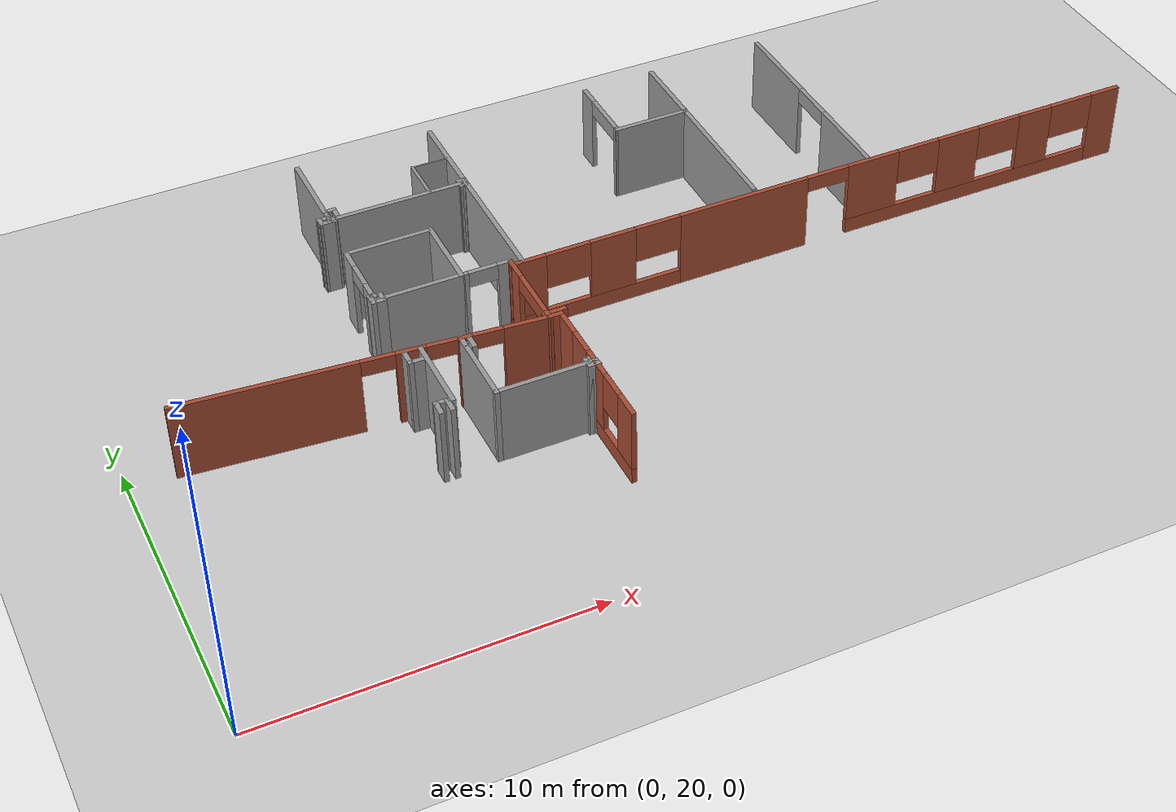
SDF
<sdf version="1.6">
 <world name="default">
  <model name="ground_plane">
   <static>1</static>
   <link name="link">
    <collision name="collision">
     <geometry><plane><normal>0 0 1</normal><size>100 100</size></plane></geometry>
     <surface><friction><ode><mu>100</mu><mu2>50</mu2></ode></friction></surface>
    </collision>
    <visual name="visual">
     <cast_shadows>0</cast_shadows>
     <geometry><plane><normal>0 0 1</normal><size>100 100</size></plane></geometry>
     <material>
      <script><uri>file://media/materials/scripts/gazebo.material</uri><name>Gazebo/Grey</name></script>
     </material>
    </visual>
   </link>
  </model>
  <model name="CVSSP">
   <pose>23.8714 24.094 0 0 -0 0</pose>
   <link name="Wall_17">
    <collision name="Wall_17_Collision">
     <geometry><box><size>7.25 0.15 2.5</size></box></geometry>
     <pose>0 0 1.25 0 -0 0</pose>
    </collision>
    <visual name="Wall_17_Visual">
     <pose>0 0 1.25 0 -0 0</pose>
     <geometry><box><size>7.25 0.15 2.5</size></box></geometry>
     <material>
      <script><uri>file://media/materials/scripts/gazebo.material</uri><name>Gazebo/Grey</name></script>
      <ambient>0.588235 0.588235 0.588235 1</ambient>
     </material>
    </visual>
    <pose>-11.4873 10.485 0 0 0 -1.5708</pose>
   </link>
   <link name="Wall_21">
    <pose>-6.21845 12.8269 0 0 0 -1.57055</pose>
    <visual name="Wall_21_Visual_0">
     <pose>-0.893143 0 1.25 0 -0 0</pose>
     <geometry><box><size>0.719046 0.15 2.5</size></box></geometry>
     <material>
      <script><uri>file://media/materials/scripts/gazebo.material</uri><name>Gazebo/Grey</name></script>
      <ambient>0.588235 0.588235 0.588235 1</ambient>
     </material>
    </visual>
    <collision name="Wall_21_Collision_0">
     <geometry><box><size>0.719046 0.15 2.5</size></box></geometry>
     <pose>-0.893143 0 1.25 0 -0 0</pose>
    </collision>
    <visual name="Wall_21_Visual_1">
     <pose>1.15058 0 1.25 0 -0 0</pose>
     <geometry><box><size>0.204165 0.15 2.5</size></box></geometry>
     <material>
      <script><uri>file://media/materials/scripts/gazebo.material</uri><name>Gazebo/Grey</name></script>
      <ambient>0.588235 0.588235 0.588235 1</ambient>
     </material>
    </visual>
    <collision name="Wall_21_Collision_1">
     <geometry><box><size>0.204165 0.15 2.5</size></box></geometry>
     <pose>1.15058 0 1.25 0 -0 0</pose>
    </collision>
    <visual name="Wall_21_Visual_2">
     <pose>0.257441 0 2.25 0 -0 0</pose>
     <geometry><box><size>1.58212 0.15 0.5</size></box></geometry>
     <material>
      <script><uri>file://media/materials/scripts/gazebo.material</uri><name>Gazebo/Grey</name></script>
      <ambient>0.588235 0.588235 0.588235 1</ambient>
     </material>
    </visual>
    <collision name="Wall_21_Collision_2">
     <geometry><box><size>1.58212 0.15 0.5</size></box></geometry>
     <pose>0.257441 0 2.25 0 -0 0</pose>
    </collision>
   </link>
   <link name="Wall_24">
    <collision name="Wall_24_Collision">
     <geometry><box><size>2.49412 0.15 2.5</size></box></geometry>
     <pose>0 0 1.25 0 -0 0</pose>
    </collision>
    <visual name="Wall_24_Visual">
     <pose>0 0 1.25 0 -0 0</pose>
     <geometry><box><size>2.49412 0.15 2.5</size></box></geometry>
     <material>
      <script><uri>file://media/materials/scripts/gazebo.material</uri><name>Gazebo/Grey</name></script>
      <ambient>0.588235 0.588235 0.588235 1</ambient>
     </material>
    </visual>
    <pose>-5.0461 11.6485 0 0 0 -0.000618</pose>
   </link>
   <link name="Wall_25">
    <collision name="Wall_25_Collision">
     <geometry><box><size>2.54698 0.15 2.5</size></box></geometry>
     <pose>0 0 1.25 0 -0 0</pose>
    </collision>
    <visual name="Wall_25_Visual">
     <pose>0 0 1.25 0 -0 0</pose>
     <geometry><box><size>2.54698 0.15 2.5</size></box></geometry>
     <material>
      <script><uri>file://media/materials/scripts/gazebo.material</uri><name>Gazebo/Grey</name></script>
      <ambient>0.588235 0.588235 0.588235 1</ambient>
     </material>
    </visual>
    <pose>-3.87405 12.8463 0 0 -0 1.5708</pose>
   </link>
   <link name="Wall_27">
    <collision name="Wall_27_Collision">
     <geometry><box><size>4.69046 0.15 2.5</size></box></geometry>
     <pose>0 0 1.25 0 -0 0</pose>
    </collision>
    <visual name="Wall_27_Visual">
     <pose>0 0 1.25 0 -0 0</pose>
     <geometry><box><size>4.69046 0.15 2.5</size></box></geometry>
     <material>
      <script><uri>file://media/materials/scripts/gazebo.material</uri><name>Gazebo/Grey</name></script>
      <ambient>0.588235 0.588235 0.588235 1</ambient>
     </material>
    </visual>
    <pose>-3.88025 9.37755 0 0 0 -1.57353</pose>
   </link>
   <link name="Wall_29">
    <pose>-0.023055 10.5087 0 0 0 -1.5708</pose>
    <visual name="Wall_29_Visual_0">
     <pose>-2.1277 0 1.25 0 -0 0</pose>
     <geometry><box><size>2.99461 0.15 2.5</size></box></geometry>
     <material>
      <script><uri>file://media/materials/scripts/gazebo.material</uri><name>Gazebo/Grey</name></script>
      <ambient>0.588235 0.588235 0.588235 1</ambient>
     </material>
    </visual>
    <collision name="Wall_29_Collision_0">
     <geometry><box><size>2.99461 0.15 2.5</size></box></geometry>
     <pose>-2.1277 0 1.25 0 -0 0</pose>
    </collision>
    <visual name="Wall_29_Visual_1">
     <pose>2.22714 0 1.25 0 -0 0</pose>
     <geometry><box><size>2.79571 0.15 2.5</size></box></geometry>
     <material>
      <script><uri>file://media/materials/scripts/gazebo.material</uri><name>Gazebo/Grey</name></script>
      <ambient>0.588235 0.588235 0.588235 1</ambient>
     </material>
    </visual>
    <collision name="Wall_29_Collision_1">
     <geometry><box><size>2.79571 0.15 2.5</size></box></geometry>
     <pose>2.22714 0 1.25 0 -0 0</pose>
    </collision>
    <visual name="Wall_29_Visual_2">
     <pose>0.099447 0 2.25 0 -0 0</pose>
     <geometry><box><size>1.45968 0.15 0.5</size></box></geometry>
     <material>
      <script><uri>file://media/materials/scripts/gazebo.material</uri><name>Gazebo/Grey</name></script>
      <ambient>0.588235 0.588235 0.588235 1</ambient>
     </material>
    </visual>
    <collision name="Wall_29_Collision_2">
     <geometry><box><size>1.45968 0.15 0.5</size></box></geometry>
     <pose>0.099447 0 2.25 0 -0 0</pose>
    </collision>
   </link>
   <link name="Wall_386">
    <pose>-17.129 4.76187 0 0 0 -0.090044</pose>
    <visual name="Wall_386_Visual_0">
     <pose>-2.75908 0 1.25 0 -0 0</pose>
     <geometry><box><size>5.32665 0.15 2.5</size></box></geometry>
     <material>
      <script><uri>file://media/materials/scripts/gazebo.material</uri><name>Gazebo/Bricks</name></script>
      <ambient>1 1 1 1</ambient>
     </material>
    </visual>
    <collision name="Wall_386_Collision_0">
     <geometry><box><size>5.32665 0.15 2.5</size></box></geometry>
     <pose>-2.75908 0 1.25 0 -0 0</pose>
    </collision>
    <visual name="Wall_386_Visual_1">
     <pose>1.33587 0 1.25 0 -0 0</pose>
     <geometry><box><size>0.878962 0.15 2.5</size></box></geometry>
     <material>
      <script><uri>file://media/materials/scripts/gazebo.material</uri><name>Gazebo/Bricks</name></script>
      <ambient>1 1 1 1</ambient>
     </material>
    </visual>
    <collision name="Wall_386_Collision_1">
     <geometry><box><size>0.878962 0.15 2.5</size></box></geometry>
     <pose>1.33587 0 1.25 0 -0 0</pose>
    </collision>
    <visual name="Wall_386_Visual_2">
     <pose>2.88503 0 1.25 0 -0 0</pose>
     <geometry><box><size>0.419343 0.15 2.5</size></box></geometry>
     <material>
      <script><uri>file://media/materials/scripts/gazebo.material</uri><name>Gazebo/Bricks</name></script>
      <ambient>1 1 1 1</ambient>
     </material>
    </visual>
    <collision name="Wall_386_Collision_2">
     <geometry><box><size>0.419343 0.15 2.5</size></box></geometry>
     <pose>2.88503 0 1.25 0 -0 0</pose>
    </collision>
    <visual name="Wall_386_Visual_3">
     <pose>4.70855 0 1.25 0 -0 0</pose>
     <geometry><box><size>1.4277 0.15 2.5</size></box></geometry>
     <material>
      <script><uri>file://media/materials/scripts/gazebo.material</uri><name>Gazebo/Bricks</name></script>
      <ambient>1 1 1 1</ambient>
     </material>
    </visual>
    <collision name="Wall_386_Collision_3">
     <geometry><box><size>1.4277 0.15 2.5</size></box></geometry>
     <pose>4.70855 0 1.25 0 -0 0</pose>
    </collision>
    <visual name="Wall_386_Visual_4">
     <pose>0.400321 0 2.25 0 -0 0</pose>
     <geometry><box><size>0.992148 0.15 0.5</size></box></geometry>
     <material>
      <script><uri>file://media/materials/scripts/gazebo.material</uri><name>Gazebo/Bricks</name></script>
      <ambient>1 1 1 1</ambient>
     </material>
    </visual>
    <collision name="Wall_386_Collision_4">
     <geometry><box><size>0.992148 0.15 0.5</size></box></geometry>
     <pose>0.400321 0 2.25 0 -0 0</pose>
    </collision>
    <visual name="Wall_386_Visual_5">
     <pose>2.22536 0 2.25 0 -0 0</pose>
     <geometry><box><size>0.9 0.15 0.5</size></box></geometry>
     <material>
      <script><uri>file://media/materials/scripts/gazebo.material</uri><name>Gazebo/Bricks</name></script>
      <ambient>1 1 1 1</ambient>
     </material>
    </visual>
    <collision name="Wall_386_Collision_5">
     <geometry><box><size>0.9 0.15 0.5</size></box></geometry>
     <pose>2.22536 0 2.25 0 -0 0</pose>
    </collision>
    <visual name="Wall_386_Visual_6">
     <pose>3.5447 0 2.25 0 -0 0</pose>
     <geometry><box><size>0.9 0.15 0.5</size></box></geometry>
     <material>
      <script><uri>file://media/materials/scripts/gazebo.material</uri><name>Gazebo/Bricks</name></script>
      <ambient>1 1 1 1</ambient>
     </material>
    </visual>
    <collision name="Wall_386_Collision_6">
     <geometry><box><size>0.9 0.15 0.5</size></box></geometry>
     <pose>3.5447 0 2.25 0 -0 0</pose>
    </collision>
   </link>
   <link name="Wall_387">
    <pose>-11.8031 5.68021 0 0 -0 1.5708</pose>
    <visual name="Wall_387_Visual_0">
     <pose>-1.29725 0 1.25 0 -0 0</pose>
     <geometry><box><size>0.353915 0.15 2.5</size></box></geometry>
     <material>
      <script><uri>file://media/materials/scripts/gazebo.material</uri><name>Gazebo/Bricks</name></script>
      <ambient>1 1 1 1</ambient>
     </material>
    </visual>
    <collision name="Wall_387_Collision_0">
     <geometry><box><size>0.353915 0.15 2.5</size></box></geometry>
     <pose>-1.29725 0 1.25 0 -0 0</pose>
    </collision>
    <visual name="Wall_387_Visual_1">
     <pose>1.03174 0 1.25 0 -0 0</pose>
     <geometry><box><size>0.884924 0.15 2.5</size></box></geometry>
     <material>
      <script><uri>file://media/materials/scripts/gazebo.material</uri><name>Gazebo/Bricks</name></script>
      <ambient>1 1 1 1</ambient>
     </material>
    </visual>
    <collision name="Wall_387_Collision_1">
     <geometry><box><size>0.884924 0.15 2.5</size></box></geometry>
     <pose>1.03174 0 1.25 0 -0 0</pose>
    </collision>
    <visual name="Wall_387_Visual_2">
     <pose>-0.265504 0 2.25 0 -0 0</pose>
     <geometry><box><size>1.70957 0.15 0.5</size></box></geometry>
     <material>
      <script><uri>file://media/materials/scripts/gazebo.material</uri><name>Gazebo/Bricks</name></script>
      <ambient>1 1 1 1</ambient>
     </material>
    </visual>
    <collision name="Wall_387_Collision_2">
     <geometry><box><size>1.70957 0.15 0.5</size></box></geometry>
     <pose>-0.265504 0 2.25 0 -0 0</pose>
    </collision>
   </link>
   <link name="Wall_411">
    <pose>-13.8531 7.07942 0 0 -0 3.14159</pose>
    <visual name="Wall_411_Visual_0">
     <pose>-1.88996 0 1.25 0 -0 0</pose>
     <geometry><box><size>0.470089 0.15 2.5</size></box></geometry>
     <material>
      <script><uri>file://media/materials/scripts/gazebo.material</uri><name>Gazebo/Grey</name></script>
      <ambient>0.588235 0.588235 0.588235 1</ambient>
     </material>
    </visual>
    <collision name="Wall_411_Collision_0">
     <geometry><box><size>0.470089 0.15 2.5</size></box></geometry>
     <pose>-1.88996 0 1.25 0 -0 0</pose>
    </collision>
    <visual name="Wall_411_Visual_1">
     <pose>0.685044 0 1.25 0 -0 0</pose>
     <geometry><box><size>2.87991 0.15 2.5</size></box></geometry>
     <material>
      <script><uri>file://media/materials/scripts/gazebo.material</uri><name>Gazebo/Grey</name></script>
      <ambient>0.588235 0.588235 0.588235 1</ambient>
     </material>
    </visual>
    <collision name="Wall_411_Collision_1">
     <geometry><box><size>2.87991 0.15 2.5</size></box></geometry>
     <pose>0.685044 0 1.25 0 -0 0</pose>
    </collision>
    <visual name="Wall_411_Visual_2">
     <pose>-1.20491 0 2.25 0 -0 0</pose>
     <geometry><box><size>0.9 0.15 0.5</size></box></geometry>
     <material>
      <script><uri>file://media/materials/scripts/gazebo.material</uri><name>Gazebo/Grey</name></script>
      <ambient>0.588235 0.588235 0.588235 1</ambient>
     </material>
    </visual>
    <collision name="Wall_411_Collision_2">
     <geometry><box><size>0.9 0.15 0.5</size></box></geometry>
     <pose>-1.20491 0 2.25 0 -0 0</pose>
    </collision>
   </link>
   <link name="Wall_412">
    <pose>-15.9031 8.25442 0 0 -0 1.5708</pose>
    <visual name="Wall_412_Visual_0">
     <pose>-0.812626 0 1.25 0 -0 0</pose>
     <geometry><box><size>0.874747 0.15 2.5</size></box></geometry>
     <material>
      <script><uri>file://media/materials/scripts/gazebo.material</uri><name>Gazebo/Grey</name></script>
      <ambient>1 1 1 1</ambient>
     </material>
    </visual>
    <collision name="Wall_412_Collision_0">
     <geometry><box><size>0.874747 0.15 2.5</size></box></geometry>
     <pose>-0.812626 0 1.25 0 -0 0</pose>
    </collision>
    <visual name="Wall_412_Visual_1">
     <pose>0.887374 0 1.25 0 -0 0</pose>
     <geometry><box><size>0.725253 0.15 2.5</size></box></geometry>
     <material>
      <script><uri>file://media/materials/scripts/gazebo.material</uri><name>Gazebo/Grey</name></script>
      <ambient>1 1 1 1</ambient>
     </material>
    </visual>
    <collision name="Wall_412_Collision_1">
     <geometry><box><size>0.725253 0.15 2.5</size></box></geometry>
     <pose>0.887374 0 1.25 0 -0 0</pose>
    </collision>
    <visual name="Wall_412_Visual_2">
     <pose>0.074747 0 2.25 0 -0 0</pose>
     <geometry><box><size>0.9 0.15 0.5</size></box></geometry>
     <material>
      <script><uri>file://media/materials/scripts/gazebo.material</uri><name>Gazebo/Grey</name></script>
      <ambient>1 1 1 1</ambient>
     </material>
    </visual>
    <collision name="Wall_412_Collision_2">
     <geometry><box><size>0.9 0.15 0.5</size></box></geometry>
     <pose>0.074747 0 2.25 0 -0 0</pose>
    </collision>
   </link>
   <link name="Wall_413">
    <collision name="Wall_413_Collision">
     <geometry><box><size>2.75 0.15 2.5</size></box></geometry>
     <pose>0 0 1.25 0 -0 0</pose>
    </collision>
    <visual name="Wall_413_Visual">
     <pose>0 0 1.25 0 -0 0</pose>
     <geometry><box><size>2.75 0.15 2.5</size></box></geometry>
     <material>
      <script><uri>file://media/materials/scripts/gazebo.material</uri><name>Gazebo/Grey</name></script>
      <ambient>0.588235 0.588235 0.588235 1</ambient>
     </material>
    </visual>
    <pose>-14.6031 9.42942 0 0 -0 0</pose>
   </link>
   <link name="Wall_414">
    <collision name="Wall_414_Collision">
     <geometry><box><size>2.5 0.15 2.5</size></box></geometry>
     <pose>0 0 1.25 0 -0 0</pose>
    </collision>
    <visual name="Wall_414_Visual">
     <pose>0 0 1.25 0 -0 0</pose>
     <geometry><box><size>2.5 0.15 2.5</size></box></geometry>
     <material>
      <script><uri>file://media/materials/scripts/gazebo.material</uri><name>Gazebo/Grey</name></script>
      <ambient>0.588235 0.588235 0.588235 1</ambient>
     </material>
    </visual>
    <pose>-13.3031 8.25442 0 0 0 -1.5708</pose>
   </link>
   <link name="Wall_416">
    <collision name="Wall_416_Collision">
     <geometry><box><size>3 0.15 2.5</size></box></geometry>
     <pose>0 0 1.25 0 -0 0</pose>
    </collision>
    <visual name="Wall_416_Visual">
     <pose>0 0 1.25 0 -0 0</pose>
     <geometry><box><size>3 0.15 2.5</size></box></geometry>
     <material>
      <script><uri>file://media/materials/scripts/gazebo.material</uri><name>Gazebo/Grey</name></script>
      <ambient>0.588235 0.588235 0.588235 1</ambient>
     </material>
    </visual>
    <pose>-15.7939 12.5789 0 0 0 -1.5708</pose>
   </link>
   <link name="Wall_417">
    <collision name="Wall_417_Collision">
     <geometry><box><size>4.25 0.15 2.5</size></box></geometry>
     <pose>0 0 1.25 0 -0 0</pose>
    </collision>
    <visual name="Wall_417_Visual">
     <pose>0 0 1.25 0 -0 0</pose>
     <geometry><box><size>4.25 0.15 2.5</size></box></geometry>
     <material>
      <script><uri>file://media/materials/scripts/gazebo.material</uri><name>Gazebo/Grey</name></script>
      <ambient>1 1 1 1</ambient>
     </material>
    </visual>
    <pose>-13.7515 11.1539 0 0 -0 0</pose>
   </link>
   <link name="Wall_419">
    <collision name="Wall_419_Collision">
     <geometry><box><size>1.502 0.1 2.5</size></box></geometry>
     <pose>0 0 1.25 0 -0 0</pose>
    </collision>
    <visual name="Wall_419_Visual">
     <pose>0 0 1.25 0 -0 0</pose>
     <geometry><box><size>1.502 0.1 2.5</size></box></geometry>
     <material>
      <script><uri>file://media/materials/scripts/gazebo.material</uri><name>Gazebo/Grey</name></script>
      <ambient>0.588235 0.588235 0.588235 1</ambient>
     </material>
    </visual>
    <pose>-12.6454 11.8362 0 0 -0 1.5708</pose>
   </link>
   <link name="Wall_420">
    <collision name="Wall_420_Collision">
     <geometry><box><size>1.18498 0.05 2.5</size></box></geometry>
     <pose>0 0 1.25 0 -0 0</pose>
    </collision>
    <visual name="Wall_420_Visual">
     <pose>0 0 1.25 0 -0 0</pose>
     <geometry><box><size>1.18498 0.05 2.5</size></box></geometry>
     <material>
      <script><uri>file://media/materials/scripts/gazebo.material</uri><name>Gazebo/Grey</name></script>
      <ambient>1 1 1 1</ambient>
     </material>
    </visual>
    <pose>-12.0954 12.5375 0 0 -0 0.000414</pose>
   </link>
   <link name="Wall_426">
    <collision name="Wall_426_Collision">
     <geometry><box><size>2.5 0.15 2.5</size></box></geometry>
     <pose>0 0 1.25 0 -0 0</pose>
    </collision>
    <visual name="Wall_426_Visual">
     <pose>0 0 1.25 0 -0 0</pose>
     <geometry><box><size>2.5 0.15 2.5</size></box></geometry>
     <material>
      <script><uri>file://media/materials/scripts/gazebo.material</uri><name>Gazebo/Grey</name></script>
      <ambient>0.588235 0.588235 0.588235 1</ambient>
     </material>
    </visual>
    <pose>-15.526 3.44298 0 0 0 -1.5708</pose>
   </link>
   <link name="Wall_434">
    <collision name="Wall_434_Collision">
     <geometry><box><size>0.640034 0.15 2.5</size></box></geometry>
     <pose>0 0 1.25 0 -0 0</pose>
    </collision>
    <visual name="Wall_434_Visual">
     <pose>0 0 1.25 0 -0 0</pose>
     <geometry><box><size>0.640034 0.15 2.5</size></box></geometry>
     <material>
      <script><uri>file://media/materials/scripts/gazebo.material</uri><name>Gazebo/Grey</name></script>
      <ambient>1 1 1 1</ambient>
     </material>
    </visual>
    <pose>-15.7533 4.14574 0 0 -0 3.14159</pose>
   </link>
   <link name="Wall_435">
    <collision name="Wall_435_Collision">
     <geometry><box><size>0.639722 0.15 2.5</size></box></geometry>
     <pose>0 0 1.25 0 -0 0</pose>
    </collision>
    <visual name="Wall_435_Visual">
     <pose>0 0 1.25 0 -0 0</pose>
     <geometry><box><size>0.639722 0.15 2.5</size></box></geometry>
     <material>
      <script><uri>file://media/materials/scripts/gazebo.material</uri><name>Gazebo/Grey</name></script>
      <ambient>0.588235 0.588235 0.588235 1</ambient>
     </material>
    </visual>
    <pose>-15.9982 4.3906 0 0 -0 1.5708</pose>
   </link>
   <link name="Wall_437">
    <collision name="Wall_437_Collision">
     <geometry><box><size>0.5 0.15 2.5</size></box></geometry>
     <pose>0 0 1.25 0 -0 0</pose>
    </collision>
    <visual name="Wall_437_Visual">
     <pose>0 0 1.25 0 -0 0</pose>
     <geometry><box><size>0.5 0.15 2.5</size></box></geometry>
     <material>
      <script><uri>file://media/materials/scripts/gazebo.material</uri><name>Gazebo/Bricks</name></script>
      <ambient>1 1 1 1</ambient>
     </material>
    </visual>
    <pose>-11.6281 4.28101 0 0 -0 0</pose>
   </link>
   <link name="Wall_438">
    <pose>-11.4531 1.98101 0 0 0 -1.5708</pose>
    <visual name="Wall_438_Visual_0">
     <pose>-1.88418 0 1.25 0 -0 0</pose>
     <geometry><box><size>0.981638 0.15 2.5</size></box></geometry>
     <material>
      <script><uri>file://media/materials/scripts/gazebo.material</uri><name>Gazebo/Bricks</name></script>
      <ambient>1 1 1 1</ambient>
     </material>
    </visual>
    <collision name="Wall_438_Collision_0">
     <geometry><box><size>0.981638 0.15 2.5</size></box></geometry>
     <pose>-1.88418 0 1.25 0 -0 0</pose>
    </collision>
    <visual name="Wall_438_Visual_1">
     <pose>0.490819 0 0.25 0 -0 0</pose>
     <geometry><box><size>3.76836 0.15 0.5</size></box></geometry>
     <material>
      <script><uri>file://media/materials/scripts/gazebo.material</uri><name>Gazebo/Bricks</name></script>
      <ambient>1 1 1 1</ambient>
     </material>
    </visual>
    <collision name="Wall_438_Collision_1">
     <geometry><box><size>3.76836 0.15 0.5</size></box></geometry>
     <pose>0.490819 0 0.25 0 -0 0</pose>
    </collision>
    <visual name="Wall_438_Visual_2">
     <pose>0.039676 0 1.5 0 -0 0</pose>
     <geometry><box><size>1.08359 0.15 2</size></box></geometry>
     <material>
      <script><uri>file://media/materials/scripts/gazebo.material</uri><name>Gazebo/Bricks</name></script>
      <ambient>1 1 1 1</ambient>
     </material>
    </visual>
    <collision name="Wall_438_Collision_2">
     <geometry><box><size>1.08359 0.15 2</size></box></geometry>
     <pose>0.039676 0 1.5 0 -0 0</pose>
    </collision>
    <visual name="Wall_438_Visual_3">
     <pose>1.93363 0 1.5 0 -0 0</pose>
     <geometry><box><size>0.882734 0.15 2</size></box></geometry>
     <material>
      <script><uri>file://media/materials/scripts/gazebo.material</uri><name>Gazebo/Bricks</name></script>
      <ambient>1 1 1 1</ambient>
     </material>
    </visual>
    <collision name="Wall_438_Collision_3">
     <geometry><box><size>0.882734 0.15 2</size></box></geometry>
     <pose>1.93363 0 1.5 0 -0 0</pose>
    </collision>
    <visual name="Wall_438_Visual_4">
     <pose>-0.94774 0 1.9 0 -0 0</pose>
     <geometry><box><size>0.891243 0.15 1.2</size></box></geometry>
     <material>
      <script><uri>file://media/materials/scripts/gazebo.material</uri><name>Gazebo/Bricks</name></script>
      <ambient>1 1 1 1</ambient>
     </material>
    </visual>
    <collision name="Wall_438_Collision_4">
     <geometry><box><size>0.891243 0.15 1.2</size></box></geometry>
     <pose>-0.94774 0 1.9 0 -0 0</pose>
    </collision>
    <visual name="Wall_438_Visual_5">
     <pose>1.03687 0 1.9 0 -0 0</pose>
     <geometry><box><size>0.910795 0.15 1.2</size></box></geometry>
     <material>
      <script><uri>file://media/materials/scripts/gazebo.material</uri><name>Gazebo/Bricks</name></script>
      <ambient>1 1 1 1</ambient>
     </material>
    </visual>
    <collision name="Wall_438_Collision_5">
     <geometry><box><size>0.910795 0.15 1.2</size></box></geometry>
     <pose>1.03687 0 1.9 0 -0 0</pose>
    </collision>
   </link>
   <link name="Wall_443">
    <collision name="Wall_443_Collision">
     <geometry><box><size>3.08833 0.15 2.5</size></box></geometry>
     <pose>0 0 1.25 0 -0 0</pose>
    </collision>
    <visual name="Wall_443_Visual">
     <pose>0 0 1.25 0 -0 0</pose>
     <geometry><box><size>3.08833 0.15 2.5</size></box></geometry>
     <material>
      <script><uri>file://media/materials/scripts/gazebo.material</uri><name>Gazebo/Grey</name></script>
      <ambient>0.588235 0.588235 0.588235 1</ambient>
     </material>
    </visual>
    <pose>-12.9025 2.02945 0 0 -0 3.14159</pose>
   </link>
   <link name="Wall_444">
    <collision name="Wall_444_Collision">
     <geometry><box><size>2.63359 0.15 2.5</size></box></geometry>
     <pose>0 0 1.25 0 -0 0</pose>
    </collision>
    <visual name="Wall_444_Visual">
     <pose>0 0 1.25 0 -0 0</pose>
     <geometry><box><size>2.63359 0.15 2.5</size></box></geometry>
     <material>
      <script><uri>file://media/materials/scripts/gazebo.material</uri><name>Gazebo/Grey</name></script>
      <ambient>0.588235 0.588235 0.588235 1</ambient>
     </material>
    </visual>
    <pose>-14.3716 3.27124 0 0 -0 1.5708</pose>
   </link>
   <link name="Wall_46">
    <pose>-1.40579 6.86917 0 0 -0 3.14155</pose>
    <visual name="Wall_46_Visual_0">
     <pose>-9.95927 0 1.25 0 -0 0</pose>
     <geometry><box><size>1.03804 0.15 2.5</size></box></geometry>
     <material>
      <script><uri>file://media/materials/scripts/gazebo.material</uri><name>Gazebo/Bricks</name></script>
      <ambient>1 1 1 1</ambient>
     </material>
    </visual>
    <collision name="Wall_46_Collision_0">
     <geometry><box><size>1.03804 0.15 2.5</size></box></geometry>
     <pose>-9.95927 0 1.25 0 -0 0</pose>
    </collision>
    <visual name="Wall_46_Visual_1">
     <pose>2.91124 0 1.25 0 -0 0</pose>
     <geometry><box><size>4.28444 0.15 2.5</size></box></geometry>
     <material>
      <script><uri>file://media/materials/scripts/gazebo.material</uri><name>Gazebo/Bricks</name></script>
      <ambient>1 1 1 1</ambient>
     </material>
    </visual>
    <collision name="Wall_46_Collision_1">
     <geometry><box><size>4.28444 0.15 2.5</size></box></geometry>
     <pose>2.91124 0 1.25 0 -0 0</pose>
    </collision>
    <visual name="Wall_46_Visual_2">
     <pose>-5.03718 0 0.25 0 -0 0</pose>
     <geometry><box><size>8.80612 0.15 0.5</size></box></geometry>
     <material>
      <script><uri>file://media/materials/scripts/gazebo.material</uri><name>Gazebo/Bricks</name></script>
      <ambient>1 1 1 1</ambient>
     </material>
    </visual>
    <collision name="Wall_46_Collision_2">
     <geometry><box><size>8.80612 0.15 0.5</size></box></geometry>
     <pose>-5.03718 0 0.25 0 -0 0</pose>
    </collision>
    <visual name="Wall_46_Visual_3">
     <pose>7.76588 0 0.25 0 -0 0</pose>
     <geometry><box><size>5.42482 0.15 0.5</size></box></geometry>
     <material>
      <script><uri>file://media/materials/scripts/gazebo.material</uri><name>Gazebo/Bricks</name></script>
      <ambient>1 1 1 1</ambient>
     </material>
    </visual>
    <collision name="Wall_46_Collision_3">
     <geometry><box><size>5.42482 0.15 0.5</size></box></geometry>
     <pose>7.76588 0 0.25 0 -0 0</pose>
    </collision>
    <visual name="Wall_46_Visual_4">
     <pose>-7.35036 0 1.5 0 -0 0</pose>
     <geometry><box><size>1.1891 0.15 2</size></box></geometry>
     <material>
      <script><uri>file://media/materials/scripts/gazebo.material</uri><name>Gazebo/Bricks</name></script>
      <ambient>1 1 1 1</ambient>
     </material>
    </visual>
    <collision name="Wall_46_Collision_4">
     <geometry><box><size>1.1891 0.15 2</size></box></geometry>
     <pose>-7.35036 0 1.5 0 -0 0</pose>
    </collision>
    <visual name="Wall_46_Visual_5">
     <pose>-4.55193 0 1.5 0 -0 0</pose>
     <geometry><box><size>1.43988 0.15 2</size></box></geometry>
     <material>
      <script><uri>file://media/materials/scripts/gazebo.material</uri><name>Gazebo/Bricks</name></script>
      <ambient>1 1 1 1</ambient>
     </material>
    </visual>
    <collision name="Wall_46_Collision_5">
     <geometry><box><size>1.43988 0.15 2</size></box></geometry>
     <pose>-4.55193 0 1.5 0 -0 0</pose>
    </collision>
    <visual name="Wall_46_Visual_6">
     <pose>-1.51388 0 1.5 0 -0 0</pose>
     <geometry><box><size>1.75953 0.15 2</size></box></geometry>
     <material>
      <script><uri>file://media/materials/scripts/gazebo.material</uri><name>Gazebo/Bricks</name></script>
      <ambient>1 1 1 1</ambient>
     </material>
    </visual>
    <collision name="Wall_46_Collision_6">
     <geometry><box><size>1.75953 0.15 2</size></box></geometry>
     <pose>-1.51388 0 1.5 0 -0 0</pose>
    </collision>
    <visual name="Wall_46_Visual_7">
     <pose>-1.51388 0 1.5 0 -0 0</pose>
     <geometry><box><size>1.75953 0.15 2</size></box></geometry>
     <material>
      <script><uri>file://media/materials/scripts/gazebo.material</uri><name>Gazebo/Bricks</name></script>
      <ambient>1 1 1 1</ambient>
     </material>
    </visual>
    <collision name="Wall_46_Collision_7">
     <geometry><box><size>1.75953 0.15 2</size></box></geometry>
     <pose>-1.51388 0 1.5 0 -0 0</pose>
    </collision>
    <visual name="Wall_46_Visual_8">
     <pose>7.24439 0 1.5 0 -0 0</pose>
     <geometry><box><size>1.44818 0.15 2</size></box></geometry>
     <material>
      <script><uri>file://media/materials/scripts/gazebo.material</uri><name>Gazebo/Bricks</name></script>
      <ambient>1 1 1 1</ambient>
     </material>
    </visual>
    <collision name="Wall_46_Collision_8">
     <geometry><box><size>1.44818 0.15 2</size></box></geometry>
     <pose>7.24439 0 1.5 0 -0 0</pose>
    </collision>
    <visual name="Wall_46_Visual_9">
     <pose>9.92244 0 1.5 0 -0 0</pose>
     <geometry><box><size>1.1117 0.15 2</size></box></geometry>
     <material>
      <script><uri>file://media/materials/scripts/gazebo.material</uri><name>Gazebo/Bricks</name></script>
      <ambient>1 1 1 1</ambient>
     </material>
    </visual>
    <collision name="Wall_46_Collision_9">
     <geometry><box><size>1.1117 0.15 2</size></box></geometry>
     <pose>9.92244 0 1.5 0 -0 0</pose>
    </collision>
    <visual name="Wall_46_Visual_10">
     <pose>-8.69258 0 1.9 0 -0 0</pose>
     <geometry><box><size>1.49533 0.15 1.2</size></box></geometry>
     <material>
      <script><uri>file://media/materials/scripts/gazebo.material</uri><name>Gazebo/Bricks</name></script>
      <ambient>1 1 1 1</ambient>
     </material>
    </visual>
    <collision name="Wall_46_Collision_10">
     <geometry><box><size>1.49533 0.15 1.2</size></box></geometry>
     <pose>-8.69258 0 1.9 0 -0 0</pose>
    </collision>
    <visual name="Wall_46_Visual_11">
     <pose>5.78688 0 1.9 0 -0 0</pose>
     <geometry><box><size>1.46684 0.15 1.2</size></box></geometry>
     <material>
      <script><uri>file://media/materials/scripts/gazebo.material</uri><name>Gazebo/Bricks</name></script>
      <ambient>1 1 1 1</ambient>
     </material>
    </visual>
    <collision name="Wall_46_Collision_11">
     <geometry><box><size>1.46684 0.15 1.2</size></box></geometry>
     <pose>5.78688 0 1.9 0 -0 0</pose>
    </collision>
    <visual name="Wall_46_Visual_12">
     <pose>-6.01384 0 1.9 0 -0 0</pose>
     <geometry><box><size>1.48394 0.15 1.2</size></box></geometry>
     <material>
      <script><uri>file://media/materials/scripts/gazebo.material</uri><name>Gazebo/Bricks</name></script>
      <ambient>1 1 1 1</ambient>
     </material>
    </visual>
    <collision name="Wall_46_Collision_12">
     <geometry><box><size>1.48394 0.15 1.2</size></box></geometry>
     <pose>-6.01384 0 1.9 0 -0 0</pose>
    </collision>
    <visual name="Wall_46_Visual_13">
     <pose>-3.11282 0 1.9 0 -0 0</pose>
     <geometry><box><size>1.43834 0.15 1.2</size></box></geometry>
     <material>
      <script><uri>file://media/materials/scripts/gazebo.material</uri><name>Gazebo/Bricks</name></script>
      <ambient>1 1 1 1</ambient>
     </material>
    </visual>
    <collision name="Wall_46_Collision_13">
     <geometry><box><size>1.43834 0.15 1.2</size></box></geometry>
     <pose>-3.11282 0 1.9 0 -0 0</pose>
    </collision>
    <visual name="Wall_46_Visual_14">
     <pose>8.66753 0 1.9 0 -0 0</pose>
     <geometry><box><size>1.39811 0.15 1.2</size></box></geometry>
     <material>
      <script><uri>file://media/materials/scripts/gazebo.material</uri><name>Gazebo/Bricks</name></script>
      <ambient>1 1 1 1</ambient>
     </material>
    </visual>
    <collision name="Wall_46_Collision_14">
     <geometry><box><size>1.39811 0.15 1.2</size></box></geometry>
     <pose>8.66753 0 1.9 0 -0 0</pose>
    </collision>
    <visual name="Wall_46_Visual_15">
     <pose>0.067453 0 2.25 0 -0 0</pose>
     <geometry><box><size>1.40314 0.15 0.5</size></box></geometry>
     <material>
      <script><uri>file://media/materials/scripts/gazebo.material</uri><name>Gazebo/Bricks</name></script>
      <ambient>1 1 1 1</ambient>
     </material>
    </visual>
    <collision name="Wall_46_Collision_15">
     <geometry><box><size>1.40314 0.15 0.5</size></box></geometry>
     <pose>0.067453 0 2.25 0 -0 0</pose>
    </collision>
    <visual name="Wall_46_Visual_16">
     <pose>0.067453 0 2.25 0 -0 0</pose>
     <geometry><box><size>1.40314 0.15 0.5</size></box></geometry>
     <material>
      <script><uri>file://media/materials/scripts/gazebo.material</uri><name>Gazebo/Bricks</name></script>
      <ambient>1 1 1 1</ambient>
     </material>
    </visual>
    <collision name="Wall_46_Collision_16">
     <geometry><box><size>1.40314 0.15 0.5</size></box></geometry>
     <pose>0.067453 0 2.25 0 -0 0</pose>
    </collision>
   </link>
   <link name="Wall_461">
    <collision name="Wall_461_Collision">
     <geometry><box><size>0.743141 0.15 2.5</size></box></geometry>
     <pose>0 0 1.25 0 -0 0</pose>
    </collision>
    <visual name="Wall_461_Visual">
     <pose>0 0 1.25 0 -0 0</pose>
     <geometry><box><size>0.743141 0.15 2.5</size></box></geometry>
     <material>
      <script><uri>file://media/materials/scripts/gazebo.material</uri><name>Gazebo/Bricks</name></script>
      <ambient>1 1 1 1</ambient>
     </material>
    </visual>
    <pose>-11.5857 4.44568 0 0 -0 0</pose>
   </link>
   <link name="Wall_683">
    <collision name="Wall_683_Collision">
     <geometry><box><size>0.416002 0.15 2.5</size></box></geometry>
     <pose>0 0 1.25 0 -0 0</pose>
    </collision>
    <visual name="Wall_683_Visual">
     <pose>0 0 1.25 0 -0 0</pose>
     <geometry><box><size>0.416002 0.15 2.5</size></box></geometry>
     <material>
      <script><uri>file://media/materials/scripts/gazebo.material</uri><name>Gazebo/Grey</name></script>
      <ambient>1 1 1 1</ambient>
     </material>
    </visual>
    <pose>-15.6425 11.5855 0 0 -0 0</pose>
   </link>
   <link name="Wall_684">
    <collision name="Wall_684_Collision">
     <geometry><box><size>0.576434 0.15 2.5</size></box></geometry>
     <pose>0 0 1.25 0 -0 0</pose>
    </collision>
    <visual name="Wall_684_Visual">
     <pose>0 0 1.25 0 -0 0</pose>
     <geometry><box><size>0.576434 0.15 2.5</size></box></geometry>
     <material>
      <script><uri>file://media/materials/scripts/gazebo.material</uri><name>Gazebo/Grey</name></script>
      <ambient>1 1 1 1</ambient>
     </material>
    </visual>
    <pose>-15.5095 11.3727 0 0 0 -1.5708</pose>
   </link>
   <link name="Wall_685">
    <collision name="Wall_685_Collision">
     <geometry><box><size>0.296904 0.15 2.5</size></box></geometry>
     <pose>0 0 1.25 0 -0 0</pose>
    </collision>
    <visual name="Wall_685_Visual">
     <pose>0 0 1.25 0 -0 0</pose>
     <geometry><box><size>0.296904 0.15 2.5</size></box></geometry>
     <material>
      <script><uri>file://media/materials/scripts/gazebo.material</uri><name>Gazebo/Grey</name></script>
      <ambient>1 1 1 1</ambient>
     </material>
    </visual>
    <pose>-15.5827 11.1599 0 0 -0 3.14159</pose>
   </link>
   <link name="Wall_686">
    <collision name="Wall_686_Collision">
     <geometry><box><size>0.244046 0.15 2.5</size></box></geometry>
     <pose>0 0 1.25 0 -0 0</pose>
    </collision>
    <visual name="Wall_686_Visual">
     <pose>0 0 1.25 0 -0 0</pose>
     <geometry><box><size>0.244046 0.15 2.5</size></box></geometry>
     <material>
      <script><uri>file://media/materials/scripts/gazebo.material</uri><name>Gazebo/Grey</name></script>
      <ambient>1 1 1 1</ambient>
     </material>
    </visual>
    <pose>-15.6625 11.1134 0 0 0 -1.71269</pose>
   </link>
   <link name="Wall_687">
    <collision name="Wall_687_Collision">
     <geometry><box><size>0.535932 0.15 2.5</size></box></geometry>
     <pose>0 0 1.25 0 -0 0</pose>
    </collision>
    <visual name="Wall_687_Visual">
     <pose>0 0 1.25 0 -0 0</pose>
     <geometry><box><size>0.535932 0.15 2.5</size></box></geometry>
     <material>
      <script><uri>file://media/materials/scripts/gazebo.material</uri><name>Gazebo/Grey</name></script>
      <ambient>1 1 1 1</ambient>
     </material>
    </visual>
    <pose>-15.862 11.0668 0 0 -0 3.14159</pose>
   </link>
   <link name="Wall_688">
    <collision name="Wall_688_Collision">
     <geometry><box><size>0.349944 0.15 2.5</size></box></geometry>
     <pose>0 0 1.25 0 -0 0</pose>
    </collision>
    <visual name="Wall_688_Visual">
     <pose>0 0 1.25 0 -0 0</pose>
     <geometry><box><size>0.349944 0.15 2.5</size></box></geometry>
     <material>
      <script><uri>file://media/materials/scripts/gazebo.material</uri><name>Gazebo/Grey</name></script>
      <ambient>1 1 1 1</ambient>
     </material>
    </visual>
    <pose>-16.0615 11.1666 0 0 -0 1.63736</pose>
   </link>
   <link name="Wall_689">
    <collision name="Wall_689_Collision">
     <geometry><box><size>0.442904 0.15 2.5</size></box></geometry>
     <pose>0 0 1.25 0 -0 0</pose>
    </collision>
    <visual name="Wall_689_Visual">
     <pose>0 0 1.25 0 -0 0</pose>
     <geometry><box><size>0.442904 0.15 2.5</size></box></geometry>
     <material>
      <script><uri>file://media/materials/scripts/gazebo.material</uri><name>Gazebo/Grey</name></script>
      <ambient>1 1 1 1</ambient>
     </material>
    </visual>
    <pose>-15.9218 11.2663 0 0 -0 0</pose>
   </link>
   <link name="Wall_690">
    <collision name="Wall_690_Collision">
     <geometry><box><size>0.469202 0.15 2.5</size></box></geometry>
     <pose>0 0 1.25 0 -0 0</pose>
    </collision>
    <visual name="Wall_690_Visual">
     <pose>0 0 1.25 0 -0 0</pose>
     <geometry><box><size>0.469202 0.15 2.5</size></box></geometry>
     <material>
      <script><uri>file://media/materials/scripts/gazebo.material</uri><name>Gazebo/Grey</name></script>
      <ambient>1 1 1 1</ambient>
     </material>
    </visual>
    <pose>-15.7755 11.4259 0 0 -0 1.5708</pose>
   </link>
   <link name="Wall_692">
    <collision name="Wall_692_Collision">
     <geometry><box><size>0.385736 0.15 2.5</size></box></geometry>
     <pose>0 0 1.25 0 -0 0</pose>
    </collision>
    <visual name="Wall_692_Visual">
     <pose>0 0 1.25 0 -0 0</pose>
     <geometry><box><size>0.385736 0.15 2.5</size></box></geometry>
     <material>
      <script><uri>file://media/materials/scripts/gazebo.material</uri><name>Gazebo/Grey</name></script>
      <ambient>1 1 1 1</ambient>
     </material>
    </visual>
    <pose>-11.6564 11.1743 0 0 -0 1.5708</pose>
   </link>
   <link name="Wall_693">
    <collision name="Wall_693_Collision">
     <geometry><box><size>0.302277 0.15 2.5</size></box></geometry>
     <pose>0 0 1.25 0 -0 0</pose>
    </collision>
    <visual name="Wall_693_Visual">
     <pose>0 0 1.25 0 -0 0</pose>
     <geometry><box><size>0.302277 0.15 2.5</size></box></geometry>
     <material>
      <script><uri>file://media/materials/scripts/gazebo.material</uri><name>Gazebo/Grey</name></script>
      <ambient>1 1 1 1</ambient>
     </material>
    </visual>
    <pose>-11.5804 11.296 0 0 -0 0.049958</pose>
   </link>
   <link name="Wall_694">
    <collision name="Wall_694_Collision">
     <geometry><box><size>0.370527 0.15 2.5</size></box></geometry>
     <pose>0 0 1.25 0 -0 0</pose>
    </collision>
    <visual name="Wall_694_Visual">
     <pose>0 0 1.25 0 -0 0</pose>
     <geometry><box><size>0.370527 0.15 2.5</size></box></geometry>
     <material>
      <script><uri>file://media/materials/scripts/gazebo.material</uri><name>Gazebo/Grey</name></script>
      <ambient>1 1 1 1</ambient>
     </material>
    </visual>
    <pose>-11.4967 11.1895 0 0 0 -1.5708</pose>
   </link>
   <link name="Wall_695">
    <collision name="Wall_695_Collision">
     <geometry><box><size>0.303789 0.15 2.5</size></box></geometry>
     <pose>0 0 1.25 0 -0 0</pose>
    </collision>
    <visual name="Wall_695_Visual">
     <pose>0 0 1.25 0 -0 0</pose>
     <geometry><box><size>0.303789 0.15 2.5</size></box></geometry>
     <material>
      <script><uri>file://media/materials/scripts/gazebo.material</uri><name>Gazebo/Grey</name></script>
      <ambient>1 1 1 1</ambient>
     </material>
    </visual>
    <pose>-11.5804 11.0678 0 0 0 -2.9927</pose>
   </link>
   <link name="Wall_697">
    <collision name="Wall_697_Collision">
     <geometry><box><size>0.438966 0.15 2.5</size></box></geometry>
     <pose>0 0 1.25 0 -0 0</pose>
    </collision>
    <visual name="Wall_697_Visual">
     <pose>0 0 1.25 0 -0 0</pose>
     <geometry><box><size>0.438966 0.15 2.5</size></box></geometry>
     <material>
      <script><uri>file://media/materials/scripts/gazebo.material</uri><name>Gazebo/Grey</name></script>
      <ambient>1 1 1 1</ambient>
     </material>
    </visual>
    <pose>-15.9915 7.1434 0 0 0 -1.5708</pose>
   </link>
   <link name="Wall_698">
    <collision name="Wall_698_Collision">
     <geometry><box><size>0.461779 0.15 2.5</size></box></geometry>
     <pose>0 0 1.25 0 -0 0</pose>
    </collision>
    <visual name="Wall_698_Visual">
     <pose>0 0 1.25 0 -0 0</pose>
     <geometry><box><size>0.461779 0.15 2.5</size></box></geometry>
     <material>
      <script><uri>file://media/materials/scripts/gazebo.material</uri><name>Gazebo/Grey</name></script>
      <ambient>1 1 1 1</ambient>
     </material>
    </visual>
    <pose>-15.8356 6.99892 0 0 -0 0</pose>
   </link>
   <link name="Wall_699">
    <collision name="Wall_699_Collision">
     <geometry><box><size>0.408549 0.15 2.5</size></box></geometry>
     <pose>0 0 1.25 0 -0 0</pose>
    </collision>
    <visual name="Wall_699_Visual">
     <pose>0 0 1.25 0 -0 0</pose>
     <geometry><box><size>0.408549 0.15 2.5</size></box></geometry>
     <material>
      <script><uri>file://media/materials/scripts/gazebo.material</uri><name>Gazebo/Grey</name></script>
      <ambient>1 1 1 1</ambient>
     </material>
    </visual>
    <pose>-15.6797 7.1282 0 0 -0 1.5708</pose>
   </link>
   <link name="Wall_700">
    <collision name="Wall_700_Collision">
     <geometry><box><size>0.332505 0.15 2.5</size></box></geometry>
     <pose>0 0 1.25 0 -0 0</pose>
    </collision>
    <visual name="Wall_700_Visual">
     <pose>0 0 1.25 0 -0 0</pose>
     <geometry><box><size>0.332505 0.15 2.5</size></box></geometry>
     <material>
      <script><uri>file://media/materials/scripts/gazebo.material</uri><name>Gazebo/Grey</name></script>
      <ambient>1 1 1 1</ambient>
     </material>
    </visual>
    <pose>-15.771 7.25747 0 0 -0 3.14159</pose>
   </link>
   <link name="Wall_701">
    <collision name="Wall_701_Collision">
     <geometry><box><size>0.196256 0.15 2.5</size></box></geometry>
     <pose>0 0 1.25 0 -0 0</pose>
    </collision>
    <visual name="Wall_701_Visual">
     <pose>0 0 1.25 0 -0 0</pose>
     <geometry><box><size>0.196256 0.15 2.5</size></box></geometry>
     <material>
      <script><uri>file://media/materials/scripts/gazebo.material</uri><name>Gazebo/Grey</name></script>
      <ambient>1 1 1 1</ambient>
     </material>
    </visual>
    <pose>-15.8622 7.28028 0 0 -0 1.5708</pose>
   </link>
   <link name="Wall_702">
    <collision name="Wall_702_Collision">
     <geometry><box><size>0.195626 0.15 2.5</size></box></geometry>
     <pose>0 0 1.25 0 -0 0</pose>
    </collision>
    <visual name="Wall_702_Visual">
     <pose>0 0 1.25 0 -0 0</pose>
     <geometry><box><size>0.195626 0.15 2.5</size></box></geometry>
     <material>
      <script><uri>file://media/materials/scripts/gazebo.material</uri><name>Gazebo/Grey</name></script>
      <ambient>1 1 1 1</ambient>
     </material>
    </visual>
    <pose>-15.8622 7.28028 0 0 0 -1.5708</pose>
   </link>
   <link name="Wall_703">
    <collision name="Wall_703_Collision">
     <geometry><box><size>0.195626 0.15 2.5</size></box></geometry>
     <pose>0 0 1.25 0 -0 0</pose>
    </collision>
    <visual name="Wall_703_Visual">
     <pose>0 0 1.25 0 -0 0</pose>
     <geometry><box><size>0.195626 0.15 2.5</size></box></geometry>
     <material>
      <script><uri>file://media/materials/scripts/gazebo.material</uri><name>Gazebo/Grey</name></script>
      <ambient>1 1 1 1</ambient>
     </material>
    </visual>
    <pose>-15.8622 7.28028 0 0 -0 1.5708</pose>
   </link>
   <link name="Wall_704">
    <collision name="Wall_704_Collision">
     <geometry><box><size>0.280166 0.15 2.5</size></box></geometry>
     <pose>0 0 1.25 0 -0 0</pose>
    </collision>
    <visual name="Wall_704_Visual">
     <pose>0 0 1.25 0 -0 0</pose>
     <geometry><box><size>0.280166 0.15 2.5</size></box></geometry>
     <material>
      <script><uri>file://media/materials/scripts/gazebo.material</uri><name>Gazebo/Grey</name></script>
      <ambient>1 1 1 1</ambient>
     </material>
    </visual>
    <pose>-15.9268 7.29549 0 0 0 -3.02448</pose>
   </link>
   <link name="Wall_707">
    <collision name="Wall_707_Collision">
     <geometry><box><size>0.522925 0.15 2.5</size></box></geometry>
     <pose>0 0 1.25 0 -0 0</pose>
    </collision>
    <visual name="Wall_707_Visual">
     <pose>0 0 1.25 0 -0 0</pose>
     <geometry><box><size>0.522925 0.15 2.5</size></box></geometry>
     <material>
      <script><uri>file://media/materials/scripts/gazebo.material</uri><name>Gazebo/Grey</name></script>
      <ambient>0.588235 0.588235 0.588235 1</ambient>
     </material>
    </visual>
    <pose>-15.6736 2.10568 0 0 -0 1.5708</pose>
   </link>
   <link name="Wall_708">
    <collision name="Wall_708_Collision">
     <geometry><box><size>0.469474 0.15 2.5</size></box></geometry>
     <pose>0 0 1.25 0 -0 0</pose>
    </collision>
    <visual name="Wall_708_Visual">
     <pose>0 0 1.25 0 -0 0</pose>
     <geometry><box><size>0.469474 0.15 2.5</size></box></geometry>
     <material>
      <script><uri>file://media/materials/scripts/gazebo.material</uri><name>Gazebo/Grey</name></script>
      <ambient>1 1 1 1</ambient>
     </material>
    </visual>
    <pose>-15.8333 2.29199 0 0 -0 3.14159</pose>
   </link>
   <link name="Wall_709">
    <collision name="Wall_709_Collision">
     <geometry><box><size>0.522692 0.15 2.5</size></box></geometry>
     <pose>0 0 1.25 0 -0 0</pose>
    </collision>
    <visual name="Wall_709_Visual">
     <pose>0 0 1.25 0 -0 0</pose>
     <geometry><box><size>0.522692 0.15 2.5</size></box></geometry>
     <material>
      <script><uri>file://media/materials/scripts/gazebo.material</uri><name>Gazebo/Grey</name></script>
      <ambient>0.588235 0.588235 0.588235 1</ambient>
     </material>
    </visual>
    <pose>-15.9968 2.10568 0 0 0 -1.5912</pose>
   </link>
   <link name="Wall_718">
    <collision name="Wall_718_Collision">
     <geometry><box><size>0.341762 0.15 2.5</size></box></geometry>
     <pose>0 0 1.25 0 -0 0</pose>
    </collision>
    <visual name="Wall_718_Visual">
     <pose>0 0 1.25 0 -0 0</pose>
     <geometry><box><size>0.341762 0.15 2.5</size></box></geometry>
     <material>
      <script><uri>file://media/materials/scripts/gazebo.material</uri><name>Gazebo/Grey</name></script>
      <ambient>1 1 1 1</ambient>
     </material>
    </visual>
    <pose>-11.5709 2.18477 0 0 -0 3.14159</pose>
   </link>
   <link name="Wall_719">
    <collision name="Wall_719_Collision">
     <geometry><box><size>0.4145 0.15 2.5</size></box></geometry>
     <pose>0 0 1.25 0 -0 0</pose>
    </collision>
    <visual name="Wall_719_Visual">
     <pose>0 0 1.25 0 -0 0</pose>
     <geometry><box><size>0.4145 0.15 2.5</size></box></geometry>
     <material>
      <script><uri>file://media/materials/scripts/gazebo.material</uri><name>Gazebo/Grey</name></script>
      <ambient>1 1 1 1</ambient>
     </material>
    </visual>
    <pose>-11.6667 2.05252 0 0 0 -1.5708</pose>
   </link>
   <link name="Wall_720">
    <collision name="Wall_720_Collision">
     <geometry><box><size>0.394752 0.15 2.5</size></box></geometry>
     <pose>0 0 1.25 0 -0 0</pose>
    </collision>
    <visual name="Wall_720_Visual">
     <pose>0 0 1.25 0 -0 0</pose>
     <geometry><box><size>0.394752 0.15 2.5</size></box></geometry>
     <material>
      <script><uri>file://media/materials/scripts/gazebo.material</uri><name>Gazebo/Grey</name></script>
      <ambient>1 1 1 1</ambient>
     </material>
    </visual>
    <pose>-11.5444 1.92027 0 0 -0 0</pose>
   </link>
   <link name="Wall_796">
    <collision name="Wall_796_Collision">
     <geometry><box><size>0.358496 0.15 2.5</size></box></geometry>
     <pose>0 0 1.25 0 -0 0</pose>
    </collision>
    <visual name="Wall_796_Visual">
     <pose>0 0 1.25 0 -0 0</pose>
     <geometry><box><size>0.358496 0.15 2.5</size></box></geometry>
     <material>
      <script><uri>file://media/materials/scripts/gazebo.material</uri><name>Gazebo/Grey</name></script>
      <ambient>0.588235 0.588235 0.588235 1</ambient>
     </material>
    </visual>
    <pose>-14.2629 4.05998 0 0 -0 0</pose>
   </link>
   <link name="Wall_797">
    <collision name="Wall_797_Collision">
     <geometry><box><size>0.5 0.15 2.5</size></box></geometry>
     <pose>0 0 1.25 0 -0 0</pose>
    </collision>
    <visual name="Wall_797_Visual">
     <pose>0 0 1.25 0 -0 0</pose>
     <geometry><box><size>0.5 0.15 2.5</size></box></geometry>
     <material>
      <script><uri>file://media/materials/scripts/gazebo.material</uri><name>Gazebo/Grey</name></script>
      <ambient>0.588235 0.588235 0.588235 1</ambient>
     </material>
    </visual>
    <pose>-14.1588 4.23498 0 0 -0 1.5708</pose>
   </link>
   <static>1</static>
  </model>
 </world>
</sdf>
